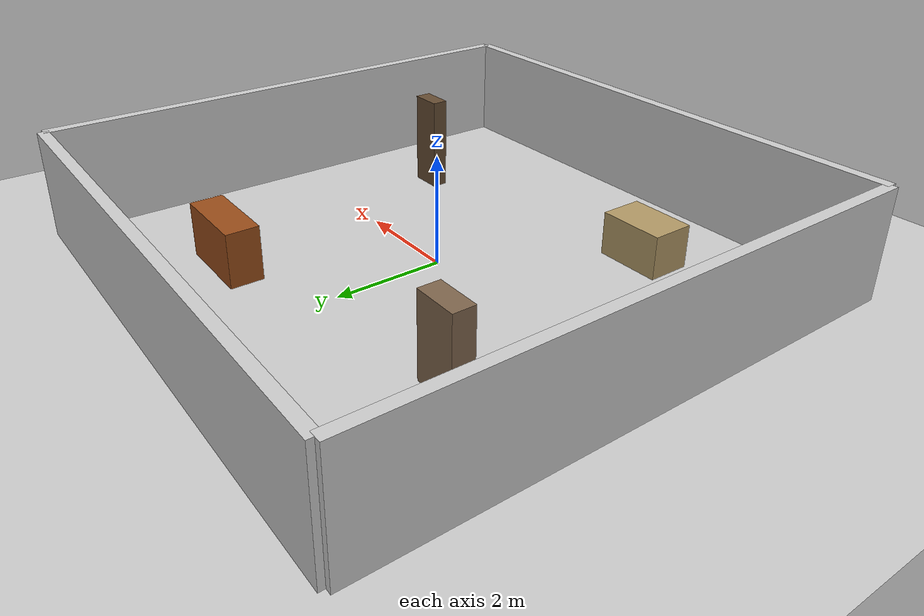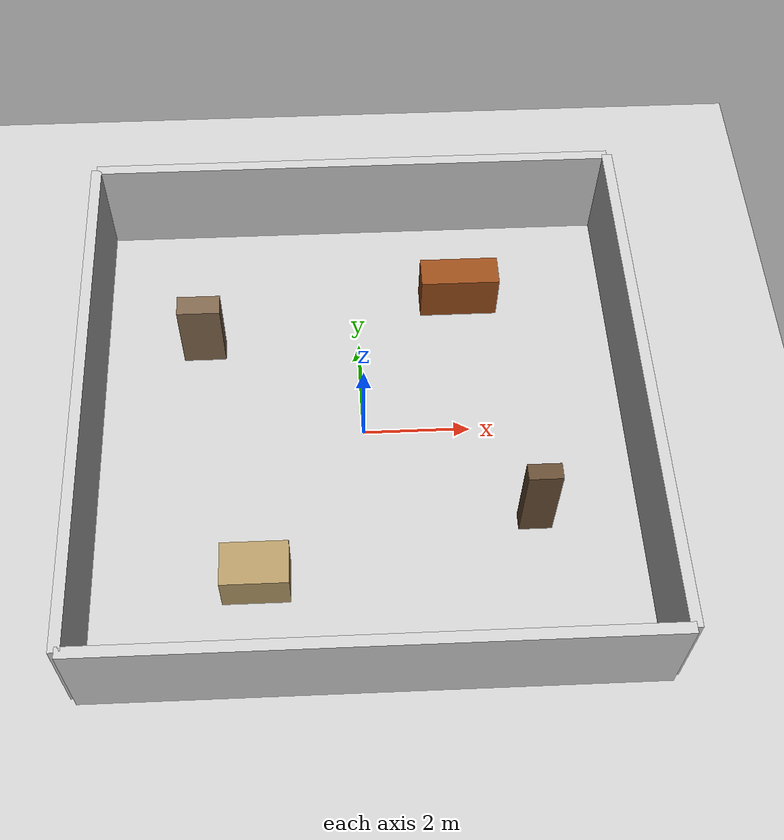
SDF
<?xml version="1.0"?>
<sdf version="1.6">
  <world name="room">

    <physics type="ode">
     <real_time_update_rate>500</real_time_update_rate>
     <max_step_size>0.002</max_step_size>
     <real_time_factor>1.0</real_time_factor>
     <ode>
      <solver>
       <type>quick</type>
       <iters>50</iters>
       <sor>1.4</sor>
      </solver>
     </ode>
    </physics>

    <include>
      <uri>model://ground_plane</uri>
    </include>

    <include>
      <uri>model://sun</uri>
    </include>

    <!-- room walls -->
    <model name="wall_north">
      <static>true</static>
      <pose>0 5 1 0 0 0</pose>
      <link name="link">
        <collision name="collision">
          <geometry><box><size>10 0.2 2</size></box></geometry>
        </collision>
        <visual name="visual">
          <geometry><box><size>10 0.2 2</size></box></geometry>
          <material><ambient>0.8 0.8 0.8 1</ambient></material>
        </visual>
      </link>
    </model>

    <model name="wall_south">
      <static>true</static>
      <pose>0 -5 1 0 0 0</pose>
      <link name="link">
        <collision name="collision">
          <geometry><box><size>10 0.2 2</size></box></geometry>
        </collision>
        <visual name="visual">
          <geometry><box><size>10 0.2 2</size></box></geometry>
          <material><ambient>0.8 0.8 0.8 1</ambient></material>
        </visual>
      </link>
    </model>

    <model name="wall_east">
      <static>true</static>
      <pose>5 0 1 0 0 1.5708</pose>
      <link name="link">
        <collision name="collision">
          <geometry><box><size>10 0.2 2</size></box></geometry>
        </collision>
        <visual name="visual">
          <geometry><box><size>10 0.2 2</size></box></geometry>
          <material><ambient>0.8 0.8 0.8 1</ambient></material>
        </visual>
      </link>
    </model>

    <model name="wall_west">
      <static>true</static>
      <pose>-5 0 1 0 0 1.5708</pose>
      <link name="link">
        <collision name="collision">
          <geometry><box><size>10 0.2 2</size></box></geometry>
        </collision>
        <visual name="visual">
          <geometry><box><size>10 0.2 2</size></box></geometry>
          <material><ambient>0.8 0.8 0.8 1</ambient></material>
        </visual>
      </link>
    </model>

    <!-- occlusion objects — boxes representing furniture -->
    <model name="sofa">
      <static>true</static>
      <pose>2 3 0.5 0 0 0</pose>
      <link name="link">
        <collision name="collision">
          <geometry><box><size>1.5 0.6 1.0</size></box></geometry>
        </collision>
        <visual name="visual">
          <geometry><box><size>1.5 0.6 1.0</size></box></geometry>
          <material><ambient>0.6 0.3 0.1 1</ambient></material>
        </visual>
      </link>
    </model>

    <model name="cabinet">
      <static>true</static>
      <pose>-3 2 0.75 0 0 0</pose>
      <link name="link">
        <collision name="collision">
          <geometry><box><size>0.8 0.4 1.5</size></box></geometry>
        </collision>
        <visual name="visual">
          <geometry><box><size>0.8 0.4 1.5</size></box></geometry>
          <material><ambient>0.5 0.4 0.3 1</ambient></material>
        </visual>
      </link>
    </model>

    <model name="table">
      <static>true</static>
      <pose>-2 -3 0.4 0 0 0</pose>
      <link name="link">
        <collision name="collision">
          <geometry><box><size>1.2 0.8 0.8</size></box></geometry>
        </collision>
        <visual name="visual">
          <geometry><box><size>1.2 0.8 0.8</size></box></geometry>
          <material><ambient>0.7 0.6 0.4 1</ambient></material>
        </visual>
      </link>
    </model>

    <model name="bookshelf">
      <static>true</static>
      <pose>3 -2 0.9 0 0 0</pose>
      <link name="link">
        <collision name="collision">
          <geometry><box><size>0.6 0.3 1.8</size></box></geometry>
        </collision>
        <visual name="visual">
          <geometry><box><size>0.6 0.3 1.8</size></box></geometry>
          <material><ambient>0.4 0.3 0.2 1</ambient></material>
        </visual>
      </link>
    </model>

  </world>
</sdf>
